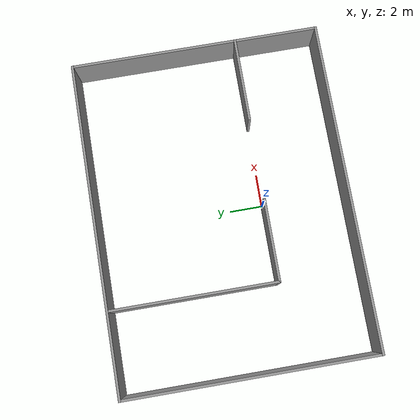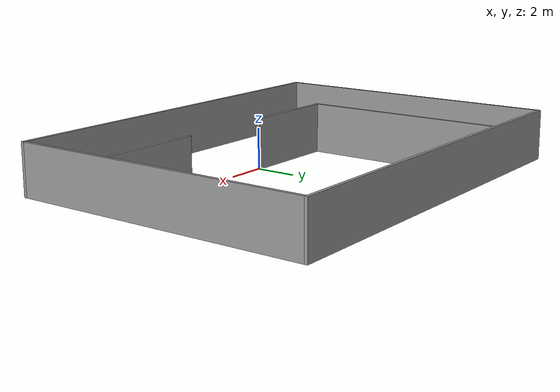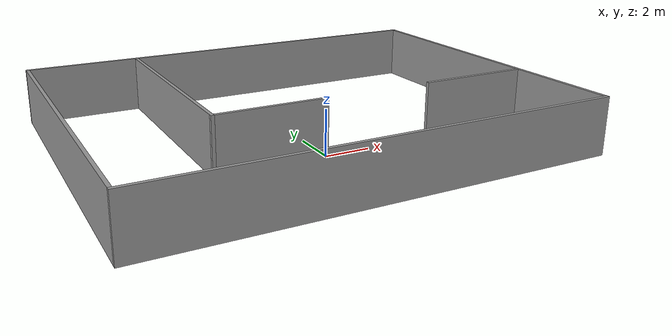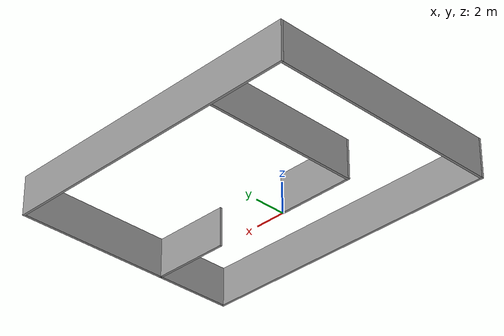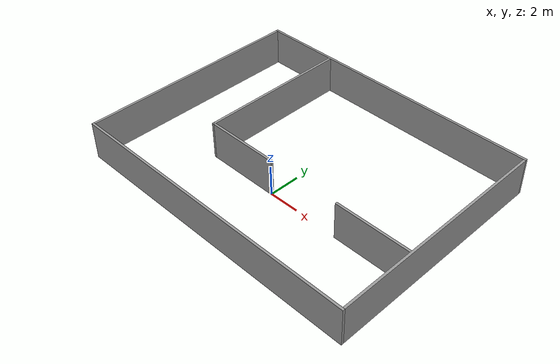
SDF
<?xml version='1.0'?>
<sdf version='1.6'>
  <model name='Proj1Room'>
    <pose frame=''>0.075 2.5 0 0 -0 0</pose>
    <link name='Wall_12'>
      <collision name='Wall_12_Collision'>
        <geometry>
          <box>
            <size>10 0.15 2.5</size>
          </box>
        </geometry>
        <pose frame=''>0 0 1.25 0 -0 0</pose>
      </collision>
      <visual name='Wall_12_Visual'>
        <pose frame=''>0 0 1.25 0 -0 0</pose>
        <geometry>
          <box>
            <size>10 0.15 2.5</size>
          </box>
        </geometry>
        <material>
          <script>
            <uri>file://media/materials/scripts/gazebo.material</uri>
            <name>Gazebo/Grey</name>
          </script>
          <ambient>1 1 1 1</ambient>
        </material>
        <meta>
          <layer>0</layer>
        </meta>
      </visual>
      <pose frame=''>-4.925 2.425 0 0 -0 1.5708</pose>
    </link>
    <link name='Wall_14'>
      <collision name='Wall_14_Collision'>
        <geometry>
          <box>
            <size>14.85 0.15 2.5</size>
          </box>
        </geometry>
        <pose frame=''>0 0 1.25 0 -0 0</pose>
      </collision>
      <visual name='Wall_14_Visual'>
        <pose frame=''>0 0 1.25 0 -0 0</pose>
        <geometry>
          <box>
            <size>14.85 0.15 2.5</size>
          </box>
        </geometry>
        <material>
          <script>
            <uri>file://media/materials/scripts/gazebo.material</uri>
            <name>Gazebo/Grey</name>
          </script>
          <ambient>1 1 1 1</ambient>
        </material>
        <meta>
          <layer>0</layer>
        </meta>
      </visual>
      <pose frame=''>-9.925 0 0 0 -0 -1.5708</pose>
    </link>
    <link name='Wall_16'>
      <collision name='Wall_16_Collision'>
        <geometry>
          <box>
            <size>14.85 0.15 2.5</size>
          </box>
        </geometry>
        <pose frame=''>0 0 1.25 0 -0 0</pose>
      </collision>
      <visual name='Wall_16_Visual'>
        <pose frame=''>0 0 1.25 0 -0 0</pose>
        <geometry>
          <box>
            <size>14.85 0.15 2.5</size>
          </box>
        </geometry>
        <material>
          <script>
            <uri>file://media/materials/scripts/gazebo.material</uri>
            <name>Gazebo/Grey</name>
          </script>
          <ambient>1 1 1 1</ambient>
        </material>
        <meta>
          <layer>0</layer>
        </meta>
      </visual>
      <pose frame=''>9.925 0 0 0 -0 1.5708</pose>
    </link>
    <link name='Wall_2'>
      <collision name='Wall_2_Collision'>
        <geometry>
          <box>
            <size>20 0.15 2.5</size>
          </box>
        </geometry>
        <pose frame=''>0 0 1.25 0 -0 0</pose>
      </collision>
      <visual name='Wall_2_Visual'>
        <pose frame=''>0 0 1.25 0 -0 0</pose>
        <geometry>
          <box>
            <size>20 0.15 2.5</size>
          </box>
        </geometry>
        <material>
          <script>
            <uri>file://media/materials/scripts/gazebo.material</uri>
            <name>Gazebo/Grey</name>
          </script>
          <ambient>1 1 1 1</ambient>
        </material>
        <meta>
          <layer>0</layer>
        </meta>
      </visual>
      <pose frame=''>0 7.5 0 0 -0 3.14159</pose>
    </link>
    <link name='Wall_4'>
      <collision name='Wall_4_Collision'>
        <geometry>
          <box>
            <size>20 0.15 2.5</size>
          </box>
        </geometry>
        <pose frame=''>0 0 1.25 0 -0 0</pose>
      </collision>
      <visual name='Wall_4_Visual'>
        <pose frame=''>0 0 1.25 0 -0 0</pose>
        <geometry>
          <box>
            <size>20 0.15 2.5</size>
          </box>
        </geometry>
        <material>
          <script>
            <uri>file://media/materials/scripts/gazebo.material</uri>
            <name>Gazebo/Grey</name>
          </script>
          <ambient>1 1 1 1</ambient>
        </material>
        <meta>
          <layer>0</layer>
        </meta>
      </visual>
      <pose frame=''>0 -7.5 0 0 -0 3.14159</pose>
    </link>
    <link name='Wall_6'>
      <collision name='Wall_6_Collision'>
        <geometry>
          <box>
            <size>5.15 0.15 2.5</size>
          </box>
        </geometry>
        <pose frame=''>0 0 1.25 0 -0 0</pose>
      </collision>
      <visual name='Wall_6_Visual'>
        <pose frame=''>0 0 1.25 0 -0 0</pose>
        <geometry>
          <box>
            <size>5.15 0.15 2.5</size>
          </box>
        </geometry>
        <material>
          <script>
            <uri>file://media/materials/scripts/gazebo.material</uri>
            <name>Gazebo/Grey</name>
          </script>
          <ambient>1 1 1 1</ambient>
        </material>
        <meta>
          <layer>0</layer>
        </meta>
      </visual>
      <pose frame=''>7.425 -2.5 0 0 -0 3.14159</pose>
    </link>
    <link name='Wall_8'>
      <collision name='Wall_8_Collision'>
        <geometry>
          <box>
            <size>5 0.15 2.5</size>
          </box>
        </geometry>
        <pose frame=''>0 0 1.25 0 -0 0</pose>
      </collision>
      <visual name='Wall_8_Visual'>
        <pose frame=''>0 0 1.25 0 -0 0</pose>
        <geometry>
          <box>
            <size>5 0.15 2.5</size>
          </box>
        </geometry>
        <material>
          <script>
            <uri>file://media/materials/scripts/gazebo.material</uri>
            <name>Gazebo/Grey</name>
          </script>
          <ambient>1 1 1 1</ambient>
        </material>
        <meta>
          <layer>0</layer>
        </meta>
      </visual>
      <pose frame=''>-2.5 -2.5 0 0 -0 3.14159</pose>
    </link>
    <static>1</static>
  </model>
</sdf>
